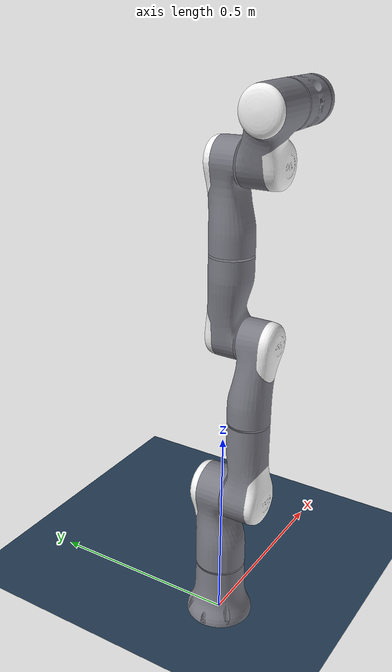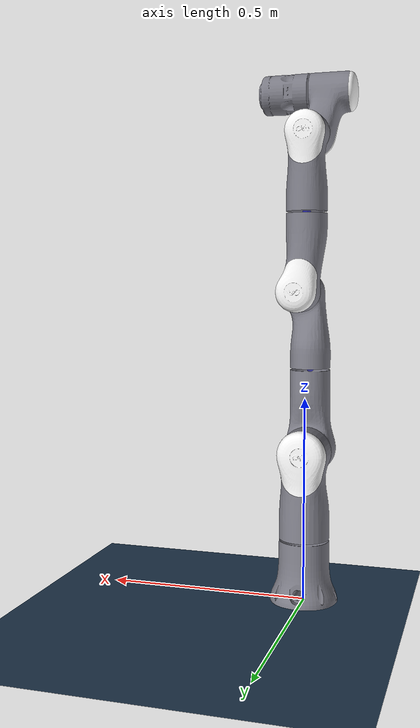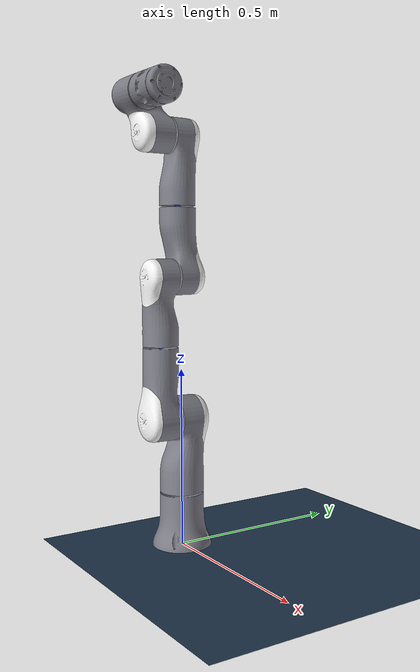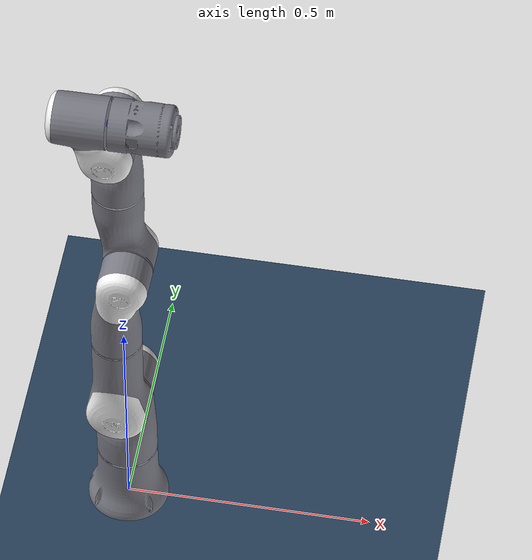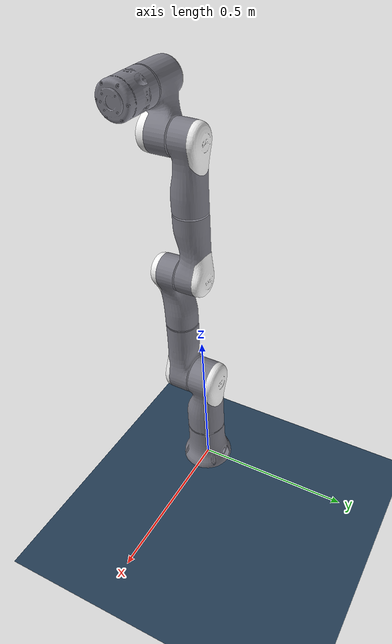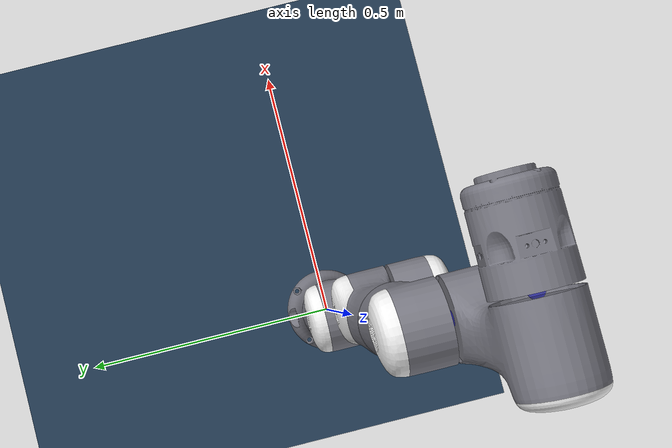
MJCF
<mujoco model="flexiv scene">
  <include file="flexiv_rizon4s.xml"/>

  <visual>
    <headlight diffuse="0.6 0.6 0.6" ambient="0.3 0.3 0.3" specular="0 0 0"/>
    <rgba haze="0.15 0.25 0.35 1"/>
    <global azimuth="-120" elevation="-20"/>
  </visual>

  <asset>
    <texture type="skybox" builtin="gradient" rgb1="0.3 0.5 0.7" rgb2="0 0 0" width="512" height="3072"/>
    <texture type="2d" name="groundplane" builtin="checker" mark="edge" rgb1="0.2 0.3 0.4" rgb2="0.1 0.2 0.3"
      markrgb="0.8 0.8 0.8" width="300" height="300"/>
    <material name="groundplane" texture="groundplane" texuniform="true" texrepeat="5 5" reflectance="0.2"/>
  </asset>

  <worldbody>
    <light pos="0 0 1.5" dir="0 0 -1" directional="true"/>
    <geom name="floor" size="0 0 0.05" type="plane" material="groundplane"/>
  </worldbody>
</mujoco>

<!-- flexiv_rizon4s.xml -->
<mujoco model="A02LS-M2">
  <compiler angle="radian" meshdir="assets" autolimits="true"/>

  <option integrator="implicitfast"/>

  <default>
    <default class="Rizon4S">
      <geom type="mesh" material="robot"/>
      <position inheritrange="1"/>
      <default class="joint1">
        <joint actuatorfrcrange="-123 123" armature="3.17"/>
      </default>
      <default class="joint2">
        <joint actuatorfrcrange="-64 64" armature="1.38"/>
      </default>
      <default class="joint3">
        <joint actuatorfrcrange="-39 39" armature="0.13"/>
      </default>
    </default>
  </default>

  <asset>
    <material name="cover" specular="0.91" shininess="0.91" rgba="0.97 0.97 0.97 1"/>
    <material name="robot" specular="0.96" shininess="0.9" rgba="0.49 0.49 0.53 1"/>

    <mesh file="link0/link0.obj"/>
    <mesh file="link1/link1_0.obj"/>
    <mesh file="link1/link1_1.obj"/>
    <mesh file="link2/link2_0.obj"/>
    <mesh file="link2/link2_1.obj"/>
    <mesh file="link3/link3_0.obj"/>
    <mesh file="link3/link3_1.obj"/>
    <mesh file="link4/link4_0.obj"/>
    <mesh file="link4/link4_1.obj"/>
    <mesh file="link5/link5_0.obj"/>
    <mesh file="link5/link5_1.obj"/>
    <mesh file="link6/link6_0.obj"/>
    <mesh file="link6/link6_1.obj"/>
    <mesh file="link7/link7.obj"/>
  </asset>

  <worldbody>
    <light name="top" pos="0 0 2" mode="trackcom"/>
    <body name="base" childclass="Rizon4S">
      <geom name="convex_mesh" mesh="link0"/>
      <body name="link1" pos="0 0 0.155" quat="0 0 0 1">
        <geom type="mesh" mesh="link1_0" material="cover"/>
        <geom type="mesh" mesh="link1_1"/>
        <inertial pos="0.0001 0.0035 0.15" quat="0.999632 0.0271175 0 0" mass="3.596" diaginertia="0.0274 0.0273597 0.00704028"/>
        <joint name="joint1" pos="0 0 0" axis="0 0 1" range="-2.8798 2.8798" actuatorfrcrange="-123 123"/>
        <site name="ft_site1" pos="0 0 0" size="0.01" rgba="0 0 1 0.5" />
        <body name="link2" pos="0 0.03 0.21">
          <geom type="mesh" mesh="link2_0"/>
          <geom type="mesh" mesh="link2_1" material="cover"/>
          <inertial pos="-0.0003 0.0361 0.0998" quat="0.707105 -0.00174158 0.00174158 0.707105" mass="2.69" diaginertia="0.0239005 0.023 0.00359951"/>
          <joint name="joint2" pos="0 0 0" axis="0 1 0" range="-2.3562 2.3562" actuatorfrcrange="-123 123"/>
          <site name="ft_site2" pos="0 0 0" size="0.01" rgba="0 0 1 0.5" />
          <body name="link3" pos="0 0.035 0.205">
            <geom type="mesh" mesh="link3_0"/>
            <geom type="mesh" mesh="link3_1" material="cover"/>
            <inertial pos="-0.0123 -0.0012 0.1366" quat="0.991949 -0.0168831 0.0724717 0.102468" mass="2.354" diaginertia="0.0145488 0.0136885 0.00376272"/>
            <joint name="joint3" pos="0 0 0" axis="0 0 1" range="-3.0543 3.0543" actuatorfrcrange="-64 64"/>
            <site name="ft_site3" pos="0 0 0" size="0.01" rgba="0 0 1 0.5" />
            <body name="link4" pos="-0.02 -0.03 0.19" quat="0 0 0 1">
              <geom type="mesh" mesh="link4_0" material="cover"/>
              <geom type="mesh" mesh="link4_1"/>
              <inertial pos="-0.0129 0.0313 0.1034" quat="0.850968 -0.00510153 0.0639413 0.521285" mass="2.354" diaginertia="0.0186051 0.0180531 0.00274185"/>
              <joint name="joint4" pos="0 0 0" axis="0 1 0" range="-1.9548 2.7751" actuatorfrcrange="-64 64"/>
              <site name="ft_site4" pos="0 0 0" size="0.01" rgba="0 0 1 0.5" />
              <body name="link5" pos="-0.02 0.025 0.195" quat="0 0 0 1">
                <geom type="mesh" mesh="link5_0"/>
                <geom type="mesh" mesh="link5_1" material="cover"/>
                <inertial pos="0.0003 0.0014 0.1363" quat="0.999677 0.0254195 0 0" mass="2.31" diaginertia="0.0142 0.0135254 0.00367456"/>
                <joint name="joint5" pos="0 0 0" axis="0 0 1" range="-3.0543 3.0543" actuatorfrcrange="-39 39"/>
                <site name="ft_site5" pos="0 0 0" size="0.01" rgba="0 0 1 0.5" />
                <body name="link6" pos="0 0.03 0.19">
                  <geom type="mesh" mesh="link6_0"/>
                  <geom type="mesh" mesh="link6_1" material="cover"/>
                  <inertial pos="0.0202 0.0596 0.0724" quat="0.858167 0.0778802 -0.159016 0.481869" mass="2.223" diaginertia="0.0100226 0.00828177 0.00339567"/>
                  <joint name="joint6" pos="0 0 0" axis="0 1 0" range="-1.4835 4.6251" actuatorfrcrange="-39 39"/>
                  <site name="ft_site6" pos="0 0 0" size="0.01" rgba="0 0 1 0.5" />
                  <body name="link7" pos="-0.015 0.073 0.11" quat="0.707107 0 -0.707107 0">
                    <geom type="mesh" mesh="link7"/>
                    <inertial pos="0 0.0001 0.0544" mass="1.403" diaginertia="0.0032 0.0032 0.0018"/>
                    <joint name="joint7" pos="0 0 0" axis="0 0 1" range="-3.0543 3.0543" actuatorfrcrange="-39 39"/>
                    <site name="ft_site7" pos="0 0 0" size="0.01" rgba="0 0 1 0.5" />
                  </body>
                </body>
              </body>
            </body>
          </body>
        </body>
      </body>
    </body>
  </worldbody>

  <actuator>
    <position name="joint1" joint="joint1" class="joint1" kp="289" kv="61"/>
    <position name="joint2" joint="joint2" class="joint1" kp="673" kv="143"/>
    <position name="joint3" joint="joint3" class="joint2" kp="224" kv="36"/>
    <position name="joint4" joint="joint4" class="joint2" kp="373" kv="59"/>
    <position name="joint5" joint="joint5" class="joint3" kp="237" kv="13"/>
    <position name="joint6" joint="joint6" class="joint3" kp="232" kv="12"/>
    <position name="joint7" joint="joint7" class="joint3" kp="186" kv="9.9"/>
  </actuator>

  <sensor>
    <force name="force_sensor_link1" site="ft_site1" />
    <torque name="torque_sensor_link1" site="ft_site1" />

    <force name="force_sensor_link2" site="ft_site2" />
    <torque name="torque_sensor_link2" site="ft_site2" />

    <force name="force_sensor_link3" site="ft_site3" />
    <torque name="torque_sensor_link3" site="ft_site3" />

    <force name="force_sensor_link4" site="ft_site4" />
    <torque name="torque_sensor_link4" site="ft_site4" />

    <force name="force_sensor_link5" site="ft_site5" />
    <torque name="torque_sensor_link5" site="ft_site5" />

    <force name="force_sensor_link6" site="ft_site6" />
    <torque name="torque_sensor_link6" site="ft_site6" />

    <force name="force_sensor_link7" site="ft_site7" />
    <torque name="torque_sensor_link7" site="ft_site7" />
  </sensor>

  <keyframe>
    <key name="home" qpos="0 0 0 1.57 0 0 0" ctrl="0 0 0 1.57 0 0 0"/>
  </keyframe>

</mujoco>
